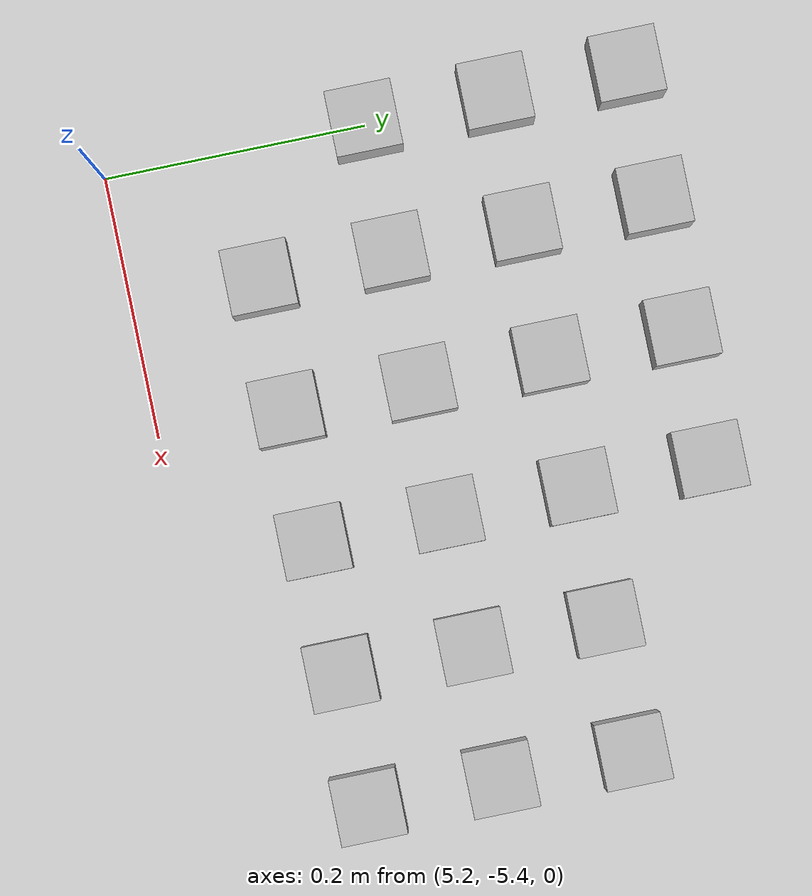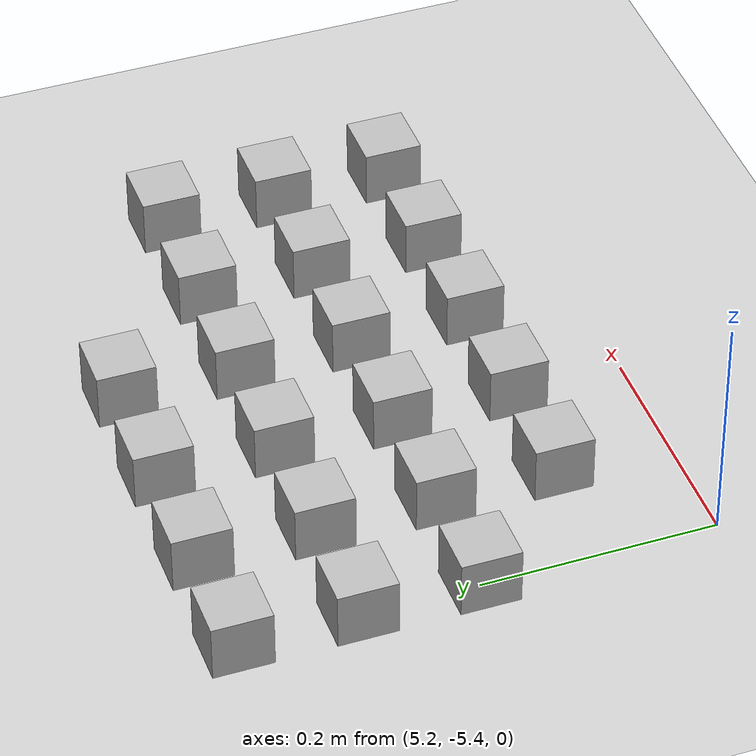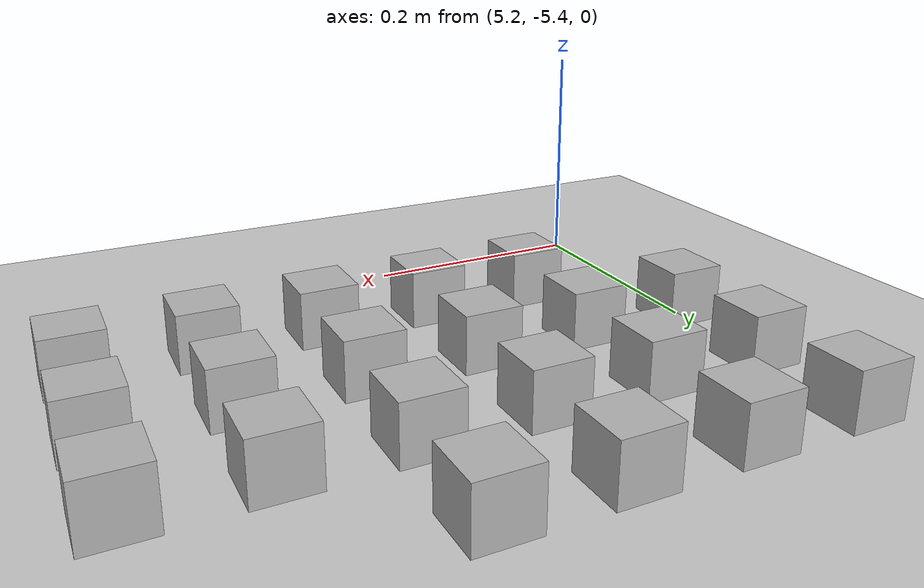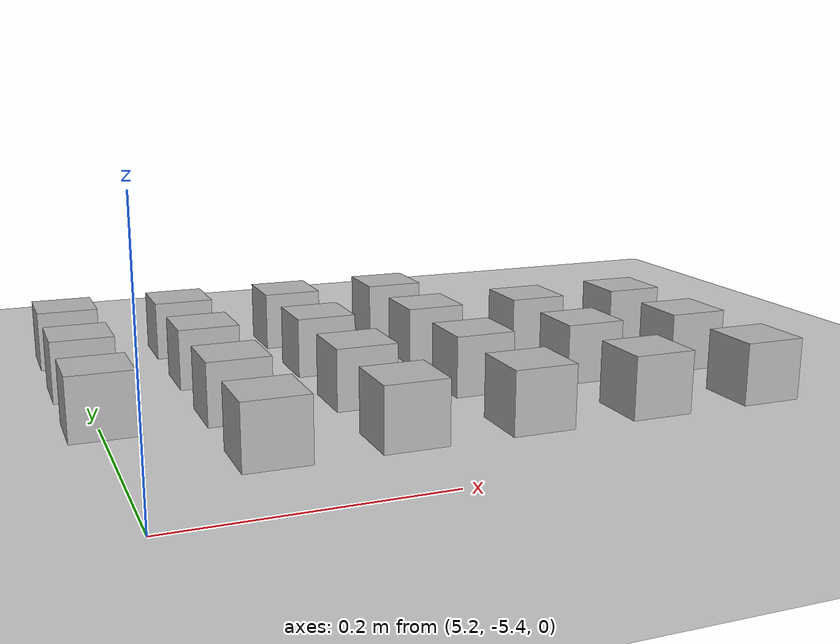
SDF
<sdf version="5.1">
 <world name="default">
  <model name="ground_plane">
   <static>1</static>
   <link name="link">
    <collision name="collision">
     <geometry><plane><normal>0 0 1</normal><size>100 100</size></plane></geometry>
     <surface><friction><ode><mu>100</mu><mu2>50</mu2></ode></friction></surface>
    </collision>
    <visual name="visual">
     <cast_shadows>0</cast_shadows>
     <geometry><plane><normal>0 0 1</normal><size>100 100</size></plane></geometry>
     <material>
      <script><uri>file://media/materials/scripts/gazebo.material</uri><name>Gazebo/Grey</name></script>
     </material>
    </visual>
   </link>
  </model>
  <model name="at99">
   <static>0</static>
   <link name="link">
    <inertial>
     <mass>0.01</mass>
     <inertia><ixx>4e-05</ixx><ixy>0</ixy><ixz>0</ixz><iyy>4e-05</iyy><iyz>0</iyz><izz>4e-05</izz></inertia>
    </inertial>
    <visual name="visual">
     <geometry><box><size>0.05 0.05 0.05</size></box></geometry>
     <material>
      <script>
       <uri>model://at0/materials/scripts</uri>
       <uri>model://at0/materials/textures</uri>
       <name>at0/Diffuse</name>
      </script>
     </material>
    </visual>
    <collision name="collision">
     <geometry><box><size>0.05 0.05 0.05</size></box></geometry>
     <surface><friction><ode><mu>0.8</mu><mu2>0.7</mu2></ode></friction></surface>
    </collision>
   </link>
   <pose>5.3 -5.3 0.025 0 -0 0</pose>
  </model>
  <model name="at100">
   <static>0</static>
   <link name="link">
    <inertial>
     <mass>0.01</mass>
     <inertia><ixx>4e-05</ixx><ixy>0</ixy><ixz>0</ixz><iyy>4e-05</iyy><iyz>0</iyz><izz>4e-05</izz></inertia>
    </inertial>
    <visual name="visual">
     <geometry><box><size>0.05 0.05 0.05</size></box></geometry>
     <material>
      <script>
       <uri>model://at0/materials/scripts</uri>
       <uri>model://at0/materials/textures</uri>
       <name>at0/Diffuse</name>
      </script>
     </material>
    </visual>
    <collision name="collision">
     <geometry><box><size>0.05 0.05 0.05</size></box></geometry>
     <surface><friction><ode><mu>0.8</mu><mu2>0.7</mu2></ode></friction></surface>
    </collision>
   </link>
   <pose>5.4 -5.3 0.025 0 -0 0</pose>
  </model>
  <model name="at101">
   <static>0</static>
   <link name="link">
    <inertial>
     <mass>0.01</mass>
     <inertia><ixx>4e-05</ixx><ixy>0</ixy><ixz>0</ixz><iyy>4e-05</iyy><iyz>0</iyz><izz>4e-05</izz></inertia>
    </inertial>
    <visual name="visual">
     <geometry><box><size>0.05 0.05 0.05</size></box></geometry>
     <material>
      <script>
       <uri>model://at0/materials/scripts</uri>
       <uri>model://at0/materials/textures</uri>
       <name>at0/Diffuse</name>
      </script>
     </material>
    </visual>
    <collision name="collision">
     <geometry><box><size>0.05 0.05 0.05</size></box></geometry>
     <surface><friction><ode><mu>0.8</mu><mu2>0.7</mu2></ode></friction></surface>
    </collision>
   </link>
   <pose>5.5 -5.3 0.025 0 -0 0</pose>
  </model>
  <model name="at102">
   <static>0</static>
   <link name="link">
    <inertial>
     <mass>0.01</mass>
     <inertia><ixx>4e-05</ixx><ixy>0</ixy><ixz>0</ixz><iyy>4e-05</iyy><iyz>0</iyz><izz>4e-05</izz></inertia>
    </inertial>
    <visual name="visual">
     <geometry><box><size>0.05 0.05 0.05</size></box></geometry>
     <material>
      <script>
       <uri>model://at0/materials/scripts</uri>
       <uri>model://at0/materials/textures</uri>
       <name>at0/Diffuse</name>
      </script>
     </material>
    </visual>
    <collision name="collision">
     <geometry><box><size>0.05 0.05 0.05</size></box></geometry>
     <surface><friction><ode><mu>0.8</mu><mu2>0.7</mu2></ode></friction></surface>
    </collision>
   </link>
   <pose>5.6 -5.3 0.025 0 -0 0</pose>
  </model>
  <model name="at103">
   <static>0</static>
   <link name="link">
    <inertial>
     <mass>0.01</mass>
     <inertia><ixx>4e-05</ixx><ixy>0</ixy><ixz>0</ixz><iyy>4e-05</iyy><iyz>0</iyz><izz>4e-05</izz></inertia>
    </inertial>
    <visual name="visual">
     <geometry><box><size>0.05 0.05 0.05</size></box></geometry>
     <material>
      <script>
       <uri>model://at0/materials/scripts</uri>
       <uri>model://at0/materials/textures</uri>
       <name>at0/Diffuse</name>
      </script>
     </material>
    </visual>
    <collision name="collision">
     <geometry><box><size>0.05 0.05 0.05</size></box></geometry>
     <surface><friction><ode><mu>0.8</mu><mu2>0.7</mu2></ode></friction></surface>
    </collision>
   </link>
   <pose>5.7 -5.3 0.025 0 -0 0</pose>
  </model>
  <model name="at106">
   <static>0</static>
   <link name="link">
    <inertial>
     <mass>0.01</mass>
     <inertia><ixx>4e-05</ixx><ixy>0</ixy><ixz>0</ixz><iyy>4e-05</iyy><iyz>0</iyz><izz>4e-05</izz></inertia>
    </inertial>
    <visual name="visual">
     <geometry><box><size>0.05 0.05 0.05</size></box></geometry>
     <material>
      <script>
       <uri>model://at0/materials/scripts</uri>
       <uri>model://at0/materials/textures</uri>
       <name>at0/Diffuse</name>
      </script>
     </material>
    </visual>
    <collision name="collision">
     <geometry><box><size>0.05 0.05 0.05</size></box></geometry>
     <surface><friction><ode><mu>0.8</mu><mu2>0.7</mu2></ode></friction></surface>
    </collision>
   </link>
   <pose>5.2 -5.2 0.025 0 -0 0</pose>
  </model>
  <model name="at107">
   <static>0</static>
   <link name="link">
    <inertial>
     <mass>0.01</mass>
     <inertia><ixx>4e-05</ixx><ixy>0</ixy><ixz>0</ixz><iyy>4e-05</iyy><iyz>0</iyz><izz>4e-05</izz></inertia>
    </inertial>
    <visual name="visual">
     <geometry><box><size>0.05 0.05 0.05</size></box></geometry>
     <material>
      <script>
       <uri>model://at0/materials/scripts</uri>
       <uri>model://at0/materials/textures</uri>
       <name>at0/Diffuse</name>
      </script>
     </material>
    </visual>
    <collision name="collision">
     <geometry><box><size>0.05 0.05 0.05</size></box></geometry>
     <surface><friction><ode><mu>0.8</mu><mu2>0.7</mu2></ode></friction></surface>
    </collision>
   </link>
   <pose>5.3 -5.2 0.025 0 -0 0</pose>
  </model>
  <model name="at108">
   <static>0</static>
   <link name="link">
    <inertial>
     <mass>0.01</mass>
     <inertia><ixx>4e-05</ixx><ixy>0</ixy><ixz>0</ixz><iyy>4e-05</iyy><iyz>0</iyz><izz>4e-05</izz></inertia>
    </inertial>
    <visual name="visual">
     <geometry><box><size>0.05 0.05 0.05</size></box></geometry>
     <material>
      <script>
       <uri>model://at0/materials/scripts</uri>
       <uri>model://at0/materials/textures</uri>
       <name>at0/Diffuse</name>
      </script>
     </material>
    </visual>
    <collision name="collision">
     <geometry><box><size>0.05 0.05 0.05</size></box></geometry>
     <surface><friction><ode><mu>0.8</mu><mu2>0.7</mu2></ode></friction></surface>
    </collision>
   </link>
   <pose>5.4 -5.2 0.025 0 -0 0</pose>
  </model>
  <model name="at109">
   <static>0</static>
   <link name="link">
    <inertial>
     <mass>0.01</mass>
     <inertia><ixx>4e-05</ixx><ixy>0</ixy><ixz>0</ixz><iyy>4e-05</iyy><iyz>0</iyz><izz>4e-05</izz></inertia>
    </inertial>
    <visual name="visual">
     <geometry><box><size>0.05 0.05 0.05</size></box></geometry>
     <material>
      <script>
       <uri>model://at0/materials/scripts</uri>
       <uri>model://at0/materials/textures</uri>
       <name>at0/Diffuse</name>
      </script>
     </material>
    </visual>
    <collision name="collision">
     <geometry><box><size>0.05 0.05 0.05</size></box></geometry>
     <surface><friction><ode><mu>0.8</mu><mu2>0.7</mu2></ode></friction></surface>
    </collision>
   </link>
   <pose>5.5 -5.2 0.025 0 -0 0</pose>
  </model>
  <model name="at110">
   <static>0</static>
   <link name="link">
    <inertial>
     <mass>0.01</mass>
     <inertia><ixx>4e-05</ixx><ixy>0</ixy><ixz>0</ixz><iyy>4e-05</iyy><iyz>0</iyz><izz>4e-05</izz></inertia>
    </inertial>
    <visual name="visual">
     <geometry><box><size>0.05 0.05 0.05</size></box></geometry>
     <material>
      <script>
       <uri>model://at0/materials/scripts</uri>
       <uri>model://at0/materials/textures</uri>
       <name>at0/Diffuse</name>
      </script>
     </material>
    </visual>
    <collision name="collision">
     <geometry><box><size>0.05 0.05 0.05</size></box></geometry>
     <surface><friction><ode><mu>0.8</mu><mu2>0.7</mu2></ode></friction></surface>
    </collision>
   </link>
   <pose>5.6 -5.2 0.025 0 -0 0</pose>
  </model>
  <model name="at111">
   <static>0</static>
   <link name="link">
    <inertial>
     <mass>0.01</mass>
     <inertia><ixx>4e-05</ixx><ixy>0</ixy><ixz>0</ixz><iyy>4e-05</iyy><iyz>0</iyz><izz>4e-05</izz></inertia>
    </inertial>
    <visual name="visual">
     <geometry><box><size>0.05 0.05 0.05</size></box></geometry>
     <material>
      <script>
       <uri>model://at0/materials/scripts</uri>
       <uri>model://at0/materials/textures</uri>
       <name>at0/Diffuse</name>
      </script>
     </material>
    </visual>
    <collision name="collision">
     <geometry><box><size>0.05 0.05 0.05</size></box></geometry>
     <surface><friction><ode><mu>0.8</mu><mu2>0.7</mu2></ode></friction></surface>
    </collision>
   </link>
   <pose>5.7 -5.2 0.025 0 -0 0</pose>
  </model>
  <model name="at114">
   <static>0</static>
   <link name="link">
    <inertial>
     <mass>0.01</mass>
     <inertia><ixx>4e-05</ixx><ixy>0</ixy><ixz>0</ixz><iyy>4e-05</iyy><iyz>0</iyz><izz>4e-05</izz></inertia>
    </inertial>
    <visual name="visual">
     <geometry><box><size>0.05 0.05 0.05</size></box></geometry>
     <material>
      <script>
       <uri>model://at0/materials/scripts</uri>
       <uri>model://at0/materials/textures</uri>
       <name>at0/Diffuse</name>
      </script>
     </material>
    </visual>
    <collision name="collision">
     <geometry><box><size>0.05 0.05 0.05</size></box></geometry>
     <surface><friction><ode><mu>0.8</mu><mu2>0.7</mu2></ode></friction></surface>
    </collision>
   </link>
   <pose>5.2 -5.1 0.025 0 -0 0</pose>
  </model>
  <model name="at115">
   <static>0</static>
   <link name="link">
    <inertial>
     <mass>0.01</mass>
     <inertia><ixx>4e-05</ixx><ixy>0</ixy><ixz>0</ixz><iyy>4e-05</iyy><iyz>0</iyz><izz>4e-05</izz></inertia>
    </inertial>
    <visual name="visual">
     <geometry><box><size>0.05 0.05 0.05</size></box></geometry>
     <material>
      <script>
       <uri>model://at0/materials/scripts</uri>
       <uri>model://at0/materials/textures</uri>
       <name>at0/Diffuse</name>
      </script>
     </material>
    </visual>
    <collision name="collision">
     <geometry><box><size>0.05 0.05 0.05</size></box></geometry>
     <surface><friction><ode><mu>0.8</mu><mu2>0.7</mu2></ode></friction></surface>
    </collision>
   </link>
   <pose>5.3 -5.1 0.025 0 -0 0</pose>
  </model>
  <model name="at116">
   <static>0</static>
   <link name="link">
    <inertial>
     <mass>0.01</mass>
     <inertia><ixx>4e-05</ixx><ixy>0</ixy><ixz>0</ixz><iyy>4e-05</iyy><iyz>0</iyz><izz>4e-05</izz></inertia>
    </inertial>
    <visual name="visual">
     <geometry><box><size>0.05 0.05 0.05</size></box></geometry>
     <material>
      <script>
       <uri>model://at0/materials/scripts</uri>
       <uri>model://at0/materials/textures</uri>
       <name>at0/Diffuse</name>
      </script>
     </material>
    </visual>
    <collision name="collision">
     <geometry><box><size>0.05 0.05 0.05</size></box></geometry>
     <surface><friction><ode><mu>0.8</mu><mu2>0.7</mu2></ode></friction></surface>
    </collision>
   </link>
   <pose>5.4 -5.1 0.025 0 -0 0</pose>
  </model>
  <model name="at117">
   <static>0</static>
   <link name="link">
    <inertial>
     <mass>0.01</mass>
     <inertia><ixx>4e-05</ixx><ixy>0</ixy><ixz>0</ixz><iyy>4e-05</iyy><iyz>0</iyz><izz>4e-05</izz></inertia>
    </inertial>
    <visual name="visual">
     <geometry><box><size>0.05 0.05 0.05</size></box></geometry>
     <material>
      <script>
       <uri>model://at0/materials/scripts</uri>
       <uri>model://at0/materials/textures</uri>
       <name>at0/Diffuse</name>
      </script>
     </material>
    </visual>
    <collision name="collision">
     <geometry><box><size>0.05 0.05 0.05</size></box></geometry>
     <surface><friction><ode><mu>0.8</mu><mu2>0.7</mu2></ode></friction></surface>
    </collision>
   </link>
   <pose>5.5 -5.1 0.025 0 -0 0</pose>
  </model>
  <model name="at118">
   <static>0</static>
   <link name="link">
    <inertial>
     <mass>0.01</mass>
     <inertia><ixx>4e-05</ixx><ixy>0</ixy><ixz>0</ixz><iyy>4e-05</iyy><iyz>0</iyz><izz>4e-05</izz></inertia>
    </inertial>
    <visual name="visual">
     <geometry><box><size>0.05 0.05 0.05</size></box></geometry>
     <material>
      <script>
       <uri>model://at0/materials/scripts</uri>
       <uri>model://at0/materials/textures</uri>
       <name>at0/Diffuse</name>
      </script>
     </material>
    </visual>
    <collision name="collision">
     <geometry><box><size>0.05 0.05 0.05</size></box></geometry>
     <surface><friction><ode><mu>0.8</mu><mu2>0.7</mu2></ode></friction></surface>
    </collision>
   </link>
   <pose>5.6 -5.1 0.025 0 -0 0</pose>
  </model>
  <model name="at119">
   <static>0</static>
   <link name="link">
    <inertial>
     <mass>0.01</mass>
     <inertia><ixx>4e-05</ixx><ixy>0</ixy><ixz>0</ixz><iyy>4e-05</iyy><iyz>0</iyz><izz>4e-05</izz></inertia>
    </inertial>
    <visual name="visual">
     <geometry><box><size>0.05 0.05 0.05</size></box></geometry>
     <material>
      <script>
       <uri>model://at0/materials/scripts</uri>
       <uri>model://at0/materials/textures</uri>
       <name>at0/Diffuse</name>
      </script>
     </material>
    </visual>
    <collision name="collision">
     <geometry><box><size>0.05 0.05 0.05</size></box></geometry>
     <surface><friction><ode><mu>0.8</mu><mu2>0.7</mu2></ode></friction></surface>
    </collision>
   </link>
   <pose>5.7 -5.1 0.025 0 -0 0</pose>
  </model>
  <model name="at122">
   <static>0</static>
   <link name="link">
    <inertial>
     <mass>0.01</mass>
     <inertia><ixx>4e-05</ixx><ixy>0</ixy><ixz>0</ixz><iyy>4e-05</iyy><iyz>0</iyz><izz>4e-05</izz></inertia>
    </inertial>
    <visual name="visual">
     <geometry><box><size>0.05 0.05 0.05</size></box></geometry>
     <material>
      <script>
       <uri>model://at0/materials/scripts</uri>
       <uri>model://at0/materials/textures</uri>
       <name>at0/Diffuse</name>
      </script>
     </material>
    </visual>
    <collision name="collision">
     <geometry><box><size>0.05 0.05 0.05</size></box></geometry>
     <surface><friction><ode><mu>0.8</mu><mu2>0.7</mu2></ode></friction></surface>
    </collision>
   </link>
   <pose>5.2 -5.0 0.025 0 -0 0</pose>
  </model>
  <model name="at123">
   <static>0</static>
   <link name="link">
    <inertial>
     <mass>0.01</mass>
     <inertia><ixx>4e-05</ixx><ixy>0</ixy><ixz>0</ixz><iyy>4e-05</iyy><iyz>0</iyz><izz>4e-05</izz></inertia>
    </inertial>
    <visual name="visual">
     <geometry><box><size>0.05 0.05 0.05</size></box></geometry>
     <material>
      <script>
       <uri>model://at0/materials/scripts</uri>
       <uri>model://at0/materials/textures</uri>
       <name>at0/Diffuse</name>
      </script>
     </material>
    </visual>
    <collision name="collision">
     <geometry><box><size>0.05 0.05 0.05</size></box></geometry>
     <surface><friction><ode><mu>0.8</mu><mu2>0.7</mu2></ode></friction></surface>
    </collision>
   </link>
   <pose>5.3 -5.0 0.025 0 -0 0</pose>
  </model>
  <model name="at124">
   <static>0</static>
   <link name="link">
    <inertial>
     <mass>0.01</mass>
     <inertia><ixx>4e-05</ixx><ixy>0</ixy><ixz>0</ixz><iyy>4e-05</iyy><iyz>0</iyz><izz>4e-05</izz></inertia>
    </inertial>
    <visual name="visual">
     <geometry><box><size>0.05 0.05 0.05</size></box></geometry>
     <material>
      <script>
       <uri>model://at0/materials/scripts</uri>
       <uri>model://at0/materials/textures</uri>
       <name>at0/Diffuse</name>
      </script>
     </material>
    </visual>
    <collision name="collision">
     <geometry><box><size>0.05 0.05 0.05</size></box></geometry>
     <surface><friction><ode><mu>0.8</mu><mu2>0.7</mu2></ode></friction></surface>
    </collision>
   </link>
   <pose>5.4 -5.0 0.025 0 -0 0</pose>
  </model>
  <model name="at125">
   <static>0</static>
   <link name="link">
    <inertial>
     <mass>0.01</mass>
     <inertia><ixx>4e-05</ixx><ixy>0</ixy><ixz>0</ixz><iyy>4e-05</iyy><iyz>0</iyz><izz>4e-05</izz></inertia>
    </inertial>
    <visual name="visual">
     <geometry><box><size>0.05 0.05 0.05</size></box></geometry>
     <material>
      <script>
       <uri>model://at0/materials/scripts</uri>
       <uri>model://at0/materials/textures</uri>
       <name>at0/Diffuse</name>
      </script>
     </material>
    </visual>
    <collision name="collision">
     <geometry><box><size>0.05 0.05 0.05</size></box></geometry>
     <surface><friction><ode><mu>0.8</mu><mu2>0.7</mu2></ode></friction></surface>
    </collision>
   </link>
   <pose>5.5 -5.0 0.025 0 -0 0</pose>
  </model>
 </world>
</sdf>
